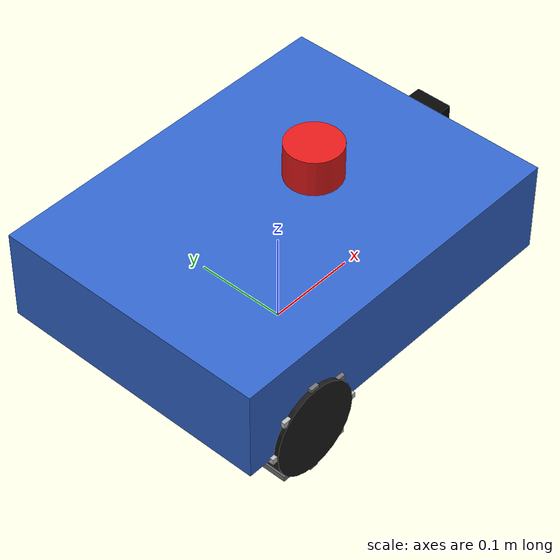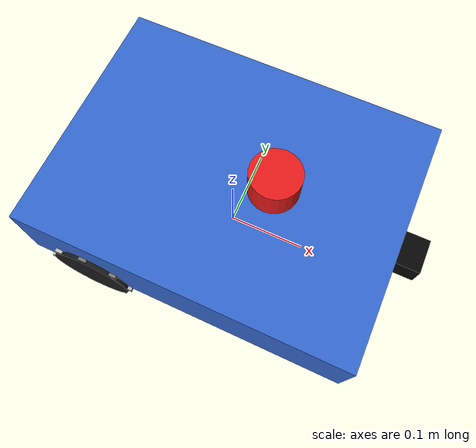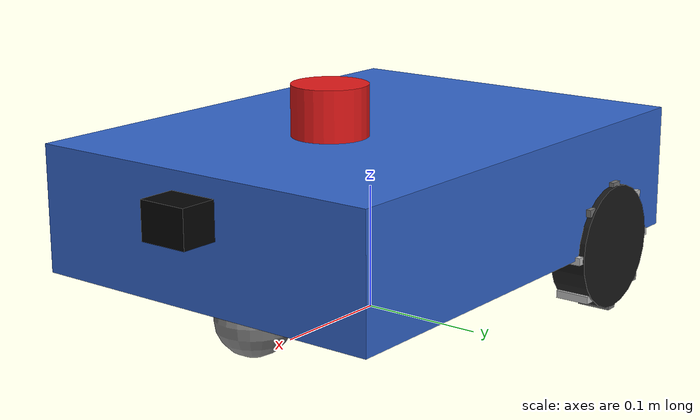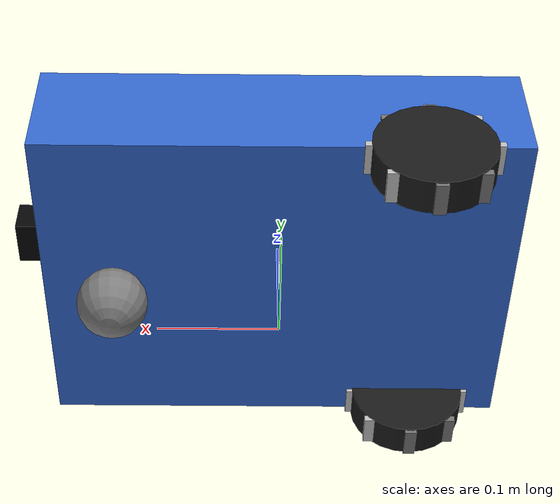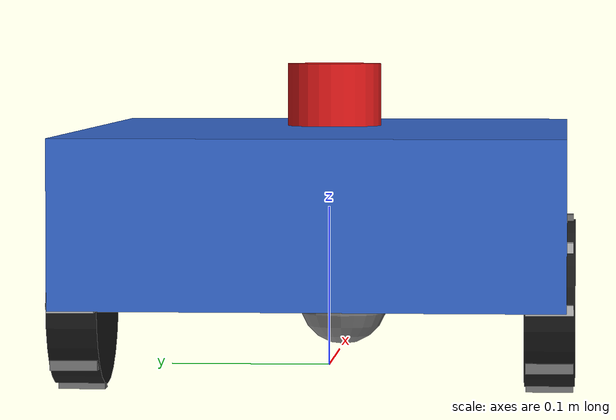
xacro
<?xml version="1.0"?>
<robot xmlns:xacro="http://www.ros.org/wiki/xacro" name="robot_v0">

  <!-- ========== 可调参数（阶段 3.1 先用手工值，后续可接 ros2 param） ========== -->
  <xacro:property name="base_length" value="0.40"/>
  <xacro:property name="base_width" value="0.30"/>
  <xacro:property name="base_height" value="0.10"/>
  <xacro:property name="base_mass" value="5.0"/>

  <xacro:property name="wheel_radius" value="0.05"/>
  <xacro:property name="wheel_width" value="0.03"/>
  <xacro:property name="wheel_mass" value="0.5"/>
  <xacro:property name="wheel_separation" value="0.28"/>
  <!-- 驱动轮在车尾（-X）：与车头万向轮形成「后驱三轮」稳定布局 -->
  <xacro:property name="wheel_offset_x" value="-0.12"/>

  <xacro:property name="caster_radius" value="0.03"/>
  <xacro:property name="caster_mass" value="0.2"/>
  <!-- 万向轮在车头（+X） -->
  <xacro:property name="caster_offset_x" value="0.14"/>

  <!-- 激光：小圆柱装在车身上方偏前，光心 = laser_link -->
  <xacro:property name="laser_radius" value="0.03"/>
  <xacro:property name="laser_height" value="0.04"/>
  <xacro:property name="laser_mass" value="0.1"/>
  <!-- 相对 base_link 前移 5cm，让雷达略靠车头 -->
  <xacro:property name="laser_offset_x" value="0.05"/>
  <!-- 雷达中心 z = 底盘半高 + 雷达半高，使雷达底面刚好贴在车顶 -->
  <xacro:property name="laser_offset_z" value="${base_height / 2.0 + laser_height / 2.0}"/>
  <!--
    /scan 的 range_min（Gazebo 插件用）。
    小于此距离的命中 → /scan 里变 inf，RViz 不画。
    取 0.30：大于雷达到车身外轮廓水平距离（约 0.25m），留余量避免车顶一圈红点。
  -->
  <xacro:property name="laser_scan_min_range" value="0.30"/>
  <!-- 光心再抬高 3cm（在圆柱顶面之上），进一步远离车身碰撞体 -->
  <xacro:property name="laser_scan_z_offset" value="0.03"/>

  <xacro:property name="camera_width" value="0.04"/>
  <xacro:property name="camera_height" value="0.03"/>
  <xacro:property name="camera_depth" value="0.03"/>
  <xacro:property name="camera_mass" value="0.05"/>
  <!-- 前保险杠低位相机：车头前立面 x=0.20 凸出半深；光心离地约 0.12m -->
  <xacro:property name="camera_offset_x" value="0.215"/>
  <xacro:property name="camera_offset_z" value="0.02"/>

  <!-- base_link 中心离地高度 = 轮半径 + 底盘半高 -->
  <xacro:property name="base_z" value="${wheel_radius + base_height / 2.0}"/>

  <!-- 驱动轮中心相对 base_link 的 z：轮心应与地面齐平 -->
  <xacro:property name="wheel_center_z" value="${-(base_height / 2.0)}"/>

  <xacro:macro name="box_inertial" params="mass x y z">
    <inertial>
      <origin xyz="0 0 0" rpy="0 0 0"/>
      <mass value="${mass}"/>
      <inertia ixx="${mass * (y*y + z*z) / 12.0}"
               iyy="${mass * (x*x + z*z) / 12.0}"
               izz="${mass * (x*x + y*y) / 12.0}"
               ixy="0" ixz="0" iyz="0"/>
    </inertial>
  </xacro:macro>

  <xacro:macro name="cylinder_inertial" params="mass radius length">
    <inertial>
      <origin xyz="0 0 0" rpy="0 0 0"/>
      <mass value="${mass}"/>
      <!-- 圆柱绕轴（y）转动惯量近似 -->
      <inertia ixx="${mass * (3.0 * radius * radius + length * length) / 12.0}"
               iyy="${mass * radius * radius / 2.0}"
               izz="${mass * (3.0 * radius * radius + length * length) / 12.0}"
               ixy="0" ixz="0" iyz="0"/>
    </inertial>
  </xacro:macro>

  <xacro:macro name="sphere_inertial" params="mass radius">
    <inertial>
      <origin xyz="0 0 0" rpy="0 0 0"/>
      <mass value="${mass}"/>
      <inertia ixx="${0.4 * mass * radius * radius}"
               iyy="${0.4 * mass * radius * radius}"
               izz="${0.4 * mass * radius * radius}"
               ixy="0" ixz="0" iyz="0"/>
    </inertial>
  </xacro:macro>

  <!--
    胎纹：在轮缘均匀贴 8 条小棱，自转时肉眼可见（比单色圆柱像真轮子）
    碰撞体仍用光滑圆柱，胎纹仅 visual，不影响 Gazebo 物理
  -->
  <xacro:macro name="wheel_tread_pattern" params="radius">
    <xacro:property name="r" value="${radius}"/>
    <xacro:property name="d" value="${radius * 0.7071}"/>
    <xacro:property name="tw" value="0.028"/>
    <xacro:property name="tr" value="0.010"/>
    <xacro:property name="tt" value="0.006"/>
    <visual name="tread_0"><origin xyz="${r} 0 0" rpy="0 0 0"/><geometry><box size="${tr} ${tw} ${tt}"/></geometry><material name="tread_a"><color rgba="0.75 0.75 0.75 1"/></material></visual>
    <visual name="tread_90"><origin xyz="0 0 ${r}" rpy="0 0 0"/><geometry><box size="${tr} ${tw} ${tt}"/></geometry><material name="tread_b"><color rgba="0.45 0.45 0.45 1"/></material></visual>
    <visual name="tread_180"><origin xyz="${-r} 0 0" rpy="0 0 0"/><geometry><box size="${tr} ${tw} ${tt}"/></geometry><material name="tread_c"><color rgba="0.75 0.75 0.75 1"/></material></visual>
    <visual name="tread_270"><origin xyz="0 0 ${-r}" rpy="0 0 0"/><geometry><box size="${tr} ${tw} ${tt}"/></geometry><material name="tread_d"><color rgba="0.45 0.45 0.45 1"/></material></visual>
    <visual name="tread_45"><origin xyz="${d} 0 ${d}" rpy="0 0 0"/><geometry><box size="${tr} ${tw} ${tt}"/></geometry><material name="tread_e"><color rgba="0.45 0.45 0.45 1"/></material></visual>
    <visual name="tread_135"><origin xyz="${-d} 0 ${d}" rpy="0 0 0"/><geometry><box size="${tr} ${tw} ${tt}"/></geometry><material name="tread_f"><color rgba="0.75 0.75 0.75 1"/></material></visual>
    <visual name="tread_225"><origin xyz="${-d} 0 ${-d}" rpy="0 0 0"/><geometry><box size="${tr} ${tw} ${tt}"/></geometry><material name="tread_g"><color rgba="0.45 0.45 0.45 1"/></material></visual>
    <visual name="tread_315"><origin xyz="${d} 0 ${-d}" rpy="0 0 0"/><geometry><box size="${tr} ${tw} ${tt}"/></geometry><material name="tread_h"><color rgba="0.75 0.75 0.75 1"/></material></visual>
  </xacro:macro>

  <!-- ========== base_footprint：地面上的参考点（2D 导航平面） ========== -->
  <link name="base_footprint"/>

  <joint name="base_joint" type="fixed">
    <parent link="base_footprint"/>
    <child link="base_link"/>
    <origin xyz="0 0 ${base_z}" rpy="0 0 0"/>
  </joint>

  <!-- ========== base_link：车身主体 ========== -->
  <!--
    visual   = RViz/Gazebo 里「长什么样」
    collision = 物理引擎「撞到什么形状」（阶段 3.2 Gazebo 才生效）
    inertial  = 质量/惯性（防仿真时翻倒、乱飞；阶段 3.1 RViz 不强制需要）
  -->
  <link name="base_link">
    <visual>
      <origin xyz="0 0 0" rpy="0 0 0"/>
      <geometry>
        <box size="${base_length} ${base_width} ${base_height}"/>
      </geometry>
      <material name="blue">
        <color rgba="0.2 0.4 0.8 1.0"/>
      </material>
    </visual>
    <collision>
      <origin xyz="0 0 0" rpy="0 0 0"/>
      <geometry>
        <box size="${base_length} ${base_width} ${base_height}"/>
      </geometry>
    </collision>
    <xacro:box_inertial mass="${base_mass}" x="${base_length}" y="${base_width}" z="${base_height}"/>
  </link>

  <!-- ========== 左驱动轮 ========== -->
  <link name="left_wheel_link">
    <visual>
      <origin xyz="0 0 0" rpy="1.5708 0 0"/>
      <geometry>
        <cylinder radius="${wheel_radius}" length="${wheel_width}"/>
      </geometry>
      <material name="black">
        <color rgba="0.1 0.1 0.1 1.0"/>
      </material>
    </visual>
    <collision>
      <origin xyz="0 0 0" rpy="1.5708 0 0"/>
      <geometry>
        <cylinder radius="${wheel_radius}" length="${wheel_width}"/>
      </geometry>
    </collision>
    <xacro:cylinder_inertial mass="${wheel_mass}" radius="${wheel_radius}" length="${wheel_width}"/>
    <xacro:wheel_tread_pattern radius="${wheel_radius}"/>
  </link>

  <!-- continuous = 可无限旋转的关节；axis 0 1 0 = 绕 Y 轴转（差速轮标准写法） -->
  <joint name="left_wheel_joint" type="continuous">
    <parent link="base_link"/>
    <child link="left_wheel_link"/>
    <origin xyz="${wheel_offset_x} ${wheel_separation / 2.0} ${wheel_center_z}" rpy="0 0 0"/>
    <axis xyz="0 1 0"/>
    <dynamics damping="1.0" friction="1.0"/>
  </joint>

  <!-- ========== 右驱动轮 ========== -->
  <link name="right_wheel_link">
    <visual>
      <origin xyz="0 0 0" rpy="1.5708 0 0"/>
      <geometry>
        <cylinder radius="${wheel_radius}" length="${wheel_width}"/>
      </geometry>
      <material name="black">
        <color rgba="0.1 0.1 0.1 1.0"/>
      </material>
    </visual>
    <collision>
      <origin xyz="0 0 0" rpy="1.5708 0 0"/>
      <geometry>
        <cylinder radius="${wheel_radius}" length="${wheel_width}"/>
      </geometry>
    </collision>
    <xacro:cylinder_inertial mass="${wheel_mass}" radius="${wheel_radius}" length="${wheel_width}"/>
    <xacro:wheel_tread_pattern radius="${wheel_radius}"/>
  </link>

  <joint name="right_wheel_joint" type="continuous">
    <parent link="base_link"/>
    <child link="right_wheel_link"/>
    <origin xyz="${wheel_offset_x} ${-wheel_separation / 2.0} ${wheel_center_z}" rpy="0 0 0"/>
    <axis xyz="0 1 0"/>
    <dynamics damping="1.0" friction="1.0"/>
  </joint>

  <!-- 万向轮在车头（+X）；与中部驱动轮形成三点支撑（Gazebo 3.2 落地关键） -->
  <link name="caster_link">
    <visual>
      <origin xyz="0 0 0" rpy="0 0 0"/>
      <geometry>
        <sphere radius="${caster_radius}"/>
      </geometry>
      <material name="gray">
        <color rgba="0.5 0.5 0.5 1.0"/>
      </material>
    </visual>
    <collision>
      <origin xyz="0 0 0" rpy="0 0 0"/>
      <geometry>
        <sphere radius="${caster_radius}"/>
      </geometry>
    </collision>
    <xacro:sphere_inertial mass="${caster_mass}" radius="${caster_radius}"/>
  </link>

  <joint name="caster_joint" type="fixed">
    <parent link="base_link"/>
    <child link="caster_link"/>
    <!-- 万向轮底部接触地面：球心 z = -(base_z - caster_radius) 相对 base_link -->
    <origin xyz="${caster_offset_x} 0 ${-(base_z - caster_radius)}" rpy="0 0 0"/>
  </joint>

  <!-- ========== 激光雷达（阶段 3.4）：固定在车顶，frame_id = laser_link ========== -->
  <!--
    只保留 visual，不要 collision：
    Gazebo ray 从 link 原点水平出射，若外壳带碰撞体，射线会先打到自己（你看到的车身红点）。
    真机雷达同理：支架不参与测距，只有光心坐标有意义。
  -->
  <link name="laser_link">
    <visual>
      <origin xyz="0 0 0" rpy="0 0 0"/>
      <geometry>
        <cylinder radius="${laser_radius}" length="${laser_height}"/>
      </geometry>
      <material name="red">
        <color rgba="0.9 0.1 0.1 1.0"/>
      </material>
    </visual>
    <xacro:sphere_inertial mass="${laser_mass}" radius="${laser_radius}"/>
  </link>

  <joint name="laser_joint" type="fixed">
    <parent link="base_link"/>
    <child link="laser_link"/>
    <origin xyz="${laser_offset_x} 0 ${laser_offset_z}" rpy="0 0 0"/>
  </joint>

  <!-- ========== 相机（阶段 3.5）：前保险杠低位，无 collision ========== -->
  <link name="camera_link">
    <visual>
      <origin xyz="0 0 0" rpy="0 0 0"/>
      <geometry>
        <box size="${camera_depth} ${camera_width} ${camera_height}"/>
      </geometry>
      <material name="camera_black">
        <color rgba="0.02 0.02 0.02 1.0"/>
      </material>
    </visual>
    <xacro:box_inertial mass="${camera_mass}" x="${camera_depth}" y="${camera_width}" z="${camera_height}"/>
  </link>

  <joint name="camera_joint" type="fixed">
    <parent link="base_link"/>
    <child link="camera_link"/>
    <origin xyz="${camera_offset_x} 0 ${camera_offset_z}" rpy="0 0 0"/>
  </joint>

  <!-- ROS 光学系：Z 前、X 右、Y 下（阶段 5 YOLO/投影用；3.5 图像 frame_id 仍用 camera_link） -->
  <link name="camera_optical_frame"/>

  <joint name="camera_optical_joint" type="fixed">
    <parent link="camera_link"/>
    <child link="camera_optical_frame"/>
    <origin xyz="0 0 0" rpy="${-pi/2} 0 ${-pi/2}"/>
  </joint>

  <!-- Gazebo 物理参数（阶段 3.2+） -->
  <xacro:include filename="robot_v0.gazebo.xacro"/>

</robot>
